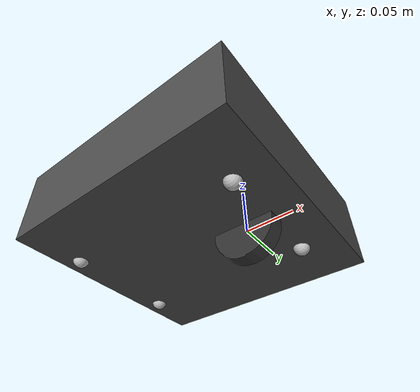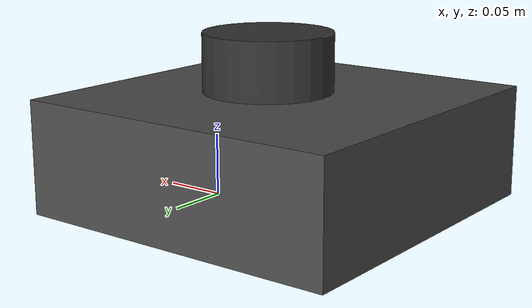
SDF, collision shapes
<?xml version="1.0" ?>
<sdf version="1.5">
  <model name="turtlebot3_waffle_pi_omni">
  <pose>0.0 0.0 0.0 0.0 0.0 0.0</pose>

    <link name="base_footprint"/>

    <link name="base_link">

      <inertial>
        <pose>-0.064 0 0.048 0 0 0</pose>
        <inertia>
          <ixx>4.2111447e-02</ixx>
          <ixy>0</ixy>
          <ixz>0</ixz>
          <iyy>4.2111447e-02</iyy>
          <iyz>0</iyz>
          <izz>7.5254874e-02</izz>
        </inertia>
        <mass>1.3729096e+00</mass>
      </inertial>

      <collision name="base_collision">
        <pose>-0.064 0 0.048 0 0 0</pose>
        <geometry>
          <box>
            <size>0.265 0.265 0.089</size>
          </box>
        </geometry>
      </collision>

      <visual name="base_visual">
        <pose>-0.064 0 0 0 0 0</pose>
        <geometry>
          <mesh>
            <uri>model://turtlebot3_common/meshes/bases/waffle_pi_base.stl</uri>
            <scale>0.001 0.001 0.001</scale>
          </mesh>
        </geometry>
        <material>
          <ambient>0.3 0.3 0.3 1.0</ambient>
          <diffuse>0.3 0.3 0.3 1.0</diffuse>
        </material>
      </visual>
    </link>

    <link name='caster_back_right_link'>
      <pose>-0.177 -0.064 0.006 -1.57 0 0</pose>
      <inertial>
        <mass>0.501</mass>
        <inertia>
          <ixx>0.00001</ixx>
          <ixy>0.000</ixy>
          <ixz>0.000</ixz>
          <iyy>0.00001</iyy>
          <iyz>0.000</iyz>
          <izz>0.00001</izz>
        </inertia>
      </inertial>
      <collision name='collision'>
        <geometry>
          <sphere>
            <radius>0.009000</radius>
          </sphere>
        </geometry>
        <surface>
          <contact>
            <ode>
              <soft_cfm>0</soft_cfm>
              <soft_erp>0.2</soft_erp>
              <kp>1e+5</kp>
              <kd>1</kd>
              <max_vel>0.01</max_vel>
              <min_depth>0.001</min_depth>
            </ode>
          </contact>
        </surface>
      </collision>
    </link>

    <link name='caster_back_left_link'>
      <pose>-0.177 0.064 0.006 -1.57 0 0</pose>
      <inertial>
        <mass>0.501</mass>
        <inertia>
          <ixx>0.00001</ixx>
          <ixy>0.000</ixy>
          <ixz>0.000</ixz>
          <iyy>0.00001</iyy>
          <iyz>0.000</iyz>
          <izz>0.00001</izz>
        </inertia>
      </inertial>
      <collision name='collision'>
        <geometry>
          <sphere>
            <radius>0.009000</radius>
          </sphere>
        </geometry>
        <surface>
          <contact>
            <ode>
              <soft_cfm>0</soft_cfm>
              <soft_erp>0.2</soft_erp>
              <kp>1e+5</kp>
              <kd>1</kd>
              <max_vel>0.01</max_vel>
              <min_depth>0.001</min_depth>
            </ode>
          </contact>
        </surface>
      </collision>
    </link>

    <link name='caster_front_right_link'>
      <pose> 0.027 -0.064 0.004 -1.57 0 0</pose>
      <inertial>
        <mass>0.501</mass>
        <inertia>
          <ixx>0.00001</ixx>
          <ixy>0.000</ixy>
          <ixz>0.000</ixz>
          <iyy>0.00001</iyy>
          <iyz>0.000</iyz>
          <izz>0.00001</izz>
        </inertia>
      </inertial>
      <collision name='collision'>
        <geometry>
          <sphere>
            <radius>0.009000</radius>
          </sphere>
        </geometry>
        <surface>
          <contact>
            <ode>
              <soft_cfm>0</soft_cfm>
              <soft_erp>0.2</soft_erp>
              <kp>1e+5</kp>
              <kd>1</kd>
              <max_vel>0.01</max_vel>
              <min_depth>0.001</min_depth>
            </ode>
          </contact>
        </surface>
      </collision>
    </link>

    <link name='caster_front_left_link'>
      <pose> 0.027 0.064 0.004 -1.57 0 0</pose>
      <inertial>
        <mass>0.501</mass>
        <inertia>
          <ixx>0.00001</ixx>
          <ixy>0.000</ixy>
          <ixz>0.000</ixz>
          <iyy>0.00001</iyy>
          <iyz>0.000</iyz>
          <izz>0.00001</izz>
        </inertia>
      </inertial>
      <collision name='collision'>
        <geometry>
          <sphere>
            <radius>0.009000</radius>
          </sphere>
        </geometry>
        <surface>
          <contact>
            <ode>
              <soft_cfm>0</soft_cfm>
              <soft_erp>0.2</soft_erp>
              <kp>1e+5</kp>
              <kd>1</kd>
              <max_vel>0.01</max_vel>
              <min_depth>0.001</min_depth>
            </ode>
          </contact>
        </surface>
      </collision>
    </link>

    <link name="imu_link">
      <sensor name="tb3_imu" type="imu">
        <always_on>true</always_on>
        <update_rate>200</update_rate>
        <imu>
          <angular_velocity>
            <x><noise type="gaussian"><mean>0.0</mean><stddev>2e-4</stddev></noise></x>
            <y><noise type="gaussian"><mean>0.0</mean><stddev>2e-4</stddev></noise></y>
            <z><noise type="gaussian"><mean>0.0</mean><stddev>2e-4</stddev></noise></z>
          </angular_velocity>
          <linear_acceleration>
            <x><noise type="gaussian"><mean>0.0</mean><stddev>1.7e-2</stddev></noise></x>
            <y><noise type="gaussian"><mean>0.0</mean><stddev>1.7e-2</stddev></noise></y>
            <z><noise type="gaussian"><mean>0.0</mean><stddev>1.7e-2</stddev></noise></z>
          </linear_acceleration>
        </imu>
        <plugin name="turtlebot3_imu" filename="libgazebo_ros_imu_sensor.so">
          <ros><remapping>~/out:=imu</remapping></ros>
        </plugin>
      </sensor>
    </link>

    <link name="base_scan">
      <inertial>
        <pose>-0.052 0 0.111 0 0 0</pose>
        <inertia>
          <ixx>0.001</ixx><ixy>0.000</ixy><ixz>0.000</ixz>
          <iyy>0.001</iyy><iyz>0.000</iyz><izz>0.001</izz>
        </inertia>
        <mass>0.114</mass>
      </inertial>

      <collision name="lidar_sensor_collision">
        <pose>-0.052 0 0.111 0 0 0</pose>
        <geometry>
          <cylinder><radius>0.0508</radius><length>0.055</length></cylinder>
        </geometry>
      </collision>

      <visual name="lidar_sensor_visual">
        <pose>-0.064 0 0.121 0 0 0</pose>
        <geometry>
          <mesh>
            <uri>model://turtlebot3_common/meshes/sensors/lds.stl</uri>
            <scale>0.001 0.001 0.001</scale>
          </mesh>
        </geometry>
        <material>
          <ambient>0.2 0.2 0.2 1.0</ambient>
          <diffuse>0.2 0.2 0.2 1.0</diffuse>
        </material>
      </visual>

      <sensor name="hls_lfcd_lds" type="ray">
        <always_on>true</always_on>
        <visualize>true</visualize>
        <pose>-0.064 0 0.011 0 0 0</pose>
        <update_rate>5</update_rate>
        <ray>
          <scan>
            <horizontal>
              <samples>360</samples>
              <resolution>1.000000</resolution>
              <min_angle>0.000000</min_angle>
              <max_angle>6.280000</max_angle>
            </horizontal>
          </scan>
          <range>
            <min>0.200000</min>
            <max>10.0</max>
            <resolution>0.015000</resolution>
          </range>
          <noise>
            <type>gaussian</type>
            <mean>0.0</mean>
            <stddev>0.01</stddev>
          </noise>
        </ray>
        <plugin name="turtlebot3_laserscan" filename="libgazebo_ros_ray_sensor.so">
          <ros><remapping>~/out:=scan</remapping></ros>
          <output_type>sensor_msgs/LaserScan</output_type>
          <frame_name>base_scan</frame_name>
        </plugin>
      </sensor>
    </link>

    <!-- 四个全向轮                                                   -->
    <!-- 轮子模型：竖直放置的圆柱体，绕自身水平轴滚动                 -->
    <!-- link 的 pose 在 joint 中定义，这里 link 内部只放几何         -->

    <!-- 前左轮 -->
    <link name="wheel_front_left_link">
      <inertial>
        <pose>0 0 0 0 0 0</pose>
        <inertia>
          <ixx>1.8158194e-03</ixx><ixy>0</ixy><ixz>0</ixz>
          <iyy>3.2922126e-03</iyy><iyz>0</iyz>
          <izz>1.8158194e-03</izz>
        </inertia>
        <mass>2.8498940e-02</mass>
      </inertial>

      <!-- 轮子几何：圆柱轴沿 link 的 Y 轴，即轮子绕 Y 轴滚动 -->
      <collision name="wheel_front_left_collision">
        <pose>0 0 0 1.5708 0 0</pose>
        <geometry>
          <cylinder><radius>0.033</radius><length>0.018</length></cylinder>
        </geometry>
        <surface>
          <friction>
            <ode>
              <mu>1.0</mu>
              <mu2>1.0</mu2>
              <fdir1>1 0 0</fdir1>
            </ode>
          </friction>
          <contact>
            <ode>
              <soft_cfm>0</soft_cfm><soft_erp>0.2</soft_erp>
              <kp>1e+5</kp><kd>1</kd>
              <max_vel>0.01</max_vel><min_depth>0.001</min_depth>
            </ode>
          </contact>
        </surface>
      </collision>

      <visual name="wheel_front_left_visual">
        <pose>0 0 0 1.5708 0 0</pose>
        <geometry>
          <mesh>
            <uri>model://turtlebot3_common/meshes/wheels/right_tire.stl</uri>
            <scale>0.001 0.001 0.001</scale>
          </mesh>
        </geometry>
        <material>
          <ambient>0.2 0.2 0.2 1.0</ambient>
          <diffuse>0.2 0.2 0.2 1.0</diffuse>
        </material>
      </visual>
    </link>

    <!-- 前右轮 -->
    <link name="wheel_front_right_link">
      <inertial>
        <pose>0 0 0 0 0 0</pose>
        <inertia>
          <ixx>1.8158194e-03</ixx><ixy>0</ixy><ixz>0</ixz>
          <iyy>3.2922126e-03</iyy><iyz>0</iyz><izz>1.8158194e-03</izz>
        </inertia>
        <mass>2.8498940e-02</mass>
      </inertial>

      <collision name="wheel_front_right_collision">
        <pose>0 0 0 1.5708 0 0</pose>
        <geometry>
          <cylinder><radius>0.033</radius><length>0.018</length></cylinder>
        </geometry>
        <surface>
          <friction>
            <ode>
              <mu>1.0</mu><mu2>1.0</mu2><fdir1>1 0 0</fdir1>
            </ode>
          </friction>
          <contact>
            <ode>
              <soft_cfm>0</soft_cfm><soft_erp>0.2</soft_erp>
              <kp>1e+5</kp><kd>1</kd>
              <max_vel>0.01</max_vel><min_depth>0.001</min_depth>
            </ode>
          </contact>
        </surface>
      </collision>

      <visual name="wheel_front_right_visual">
        <pose>0 0 0 1.5708 0 0</pose>
        <geometry>
          <mesh>
            <uri>model://turtlebot3_common/meshes/wheels/left_tire.stl</uri>
            <scale>0.001 0.001 0.001</scale>
          </mesh>
        </geometry>
        <material>
          <ambient>0.2 0.2 0.2 1.0</ambient>
          <diffuse>0.2 0.2 0.2 1.0</diffuse>
        </material>
      </visual>
    </link>

    <!-- 后左轮 -->
    <link name="wheel_rear_left_link">
      <inertial>
        <pose>0 0 0 0 0 0</pose>
        <inertia>
          <ixx>1.8158194e-03</ixx><ixy>0</ixy><ixz>0</ixz>
          <iyy>3.2922126e-03</iyy><iyz>0</iyz><izz>1.8158194e-03</izz>
        </inertia>
        <mass>2.8498940e-02</mass>
      </inertial>

      <collision name="wheel_rear_left_collision">
        <pose>0 0 0 1.5708 0 0</pose>
        <geometry>
          <cylinder><radius>0.033</radius><length>0.018</length></cylinder>
        </geometry>
        <surface>
          <friction>
            <ode>
              <mu>1.0</mu><mu2>1.0</mu2><fdir1>1 0 0</fdir1>
            </ode>
          </friction>
          <contact>
            <ode>
              <soft_cfm>0</soft_cfm><soft_erp>0.2</soft_erp>
              <kp>1e+5</kp><kd>1</kd>
              <max_vel>0.01</max_vel><min_depth>0.001</min_depth>
            </ode>
          </contact>
        </surface>
      </collision>

      <visual name="wheel_rear_left_visual">
        <pose>0 0 0 1.5708 0 0</pose>
        <geometry>
          <mesh>
            <uri>model://turtlebot3_common/meshes/wheels/right_tire.stl</uri>
            <scale>0.001 0.001 0.001</scale>
          </mesh>
        </geometry>
        <material>
          <ambient>0.2 0.2 0.2 1.0</ambient>
          <diffuse>0.2 0.2 0.2 1.0</diffuse>
        </material>
      </visual>
    </link>

    <!-- 后右轮 -->
    <link name="wheel_rear_right_link">
      <inertial>
        <pose>0 0 0 0 0 0</pose>
        <inertia>
          <ixx>1.8158194e-03</ixx><ixy>0</ixy><ixz>0</ixz>
          <iyy>3.2922126e-03</iyy><iyz>0</iyz><izz>1.8158194e-03</izz>
        </inertia>
        <mass>2.8498940e-02</mass>
      </inertial>

      <collision name="wheel_rear_right_collision">
        <pose>0 0 0 1.5708 0 0</pose>
        <geometry>
          <cylinder><radius>0.033</radius><length>0.018</length></cylinder>
        </geometry>
        <surface>
          <friction>
            <ode>
              <mu>1.0</mu><mu2>1.0</mu2><fdir1>1 0 0</fdir1>
            </ode>
          </friction>
          <contact>
            <ode>
              <soft_cfm>0</soft_cfm><soft_erp>0.2</soft_erp>
              <kp>1e+5</kp><kd>1</kd>
              <max_vel>0.01</max_vel><min_depth>0.001</min_depth>
            </ode>
          </contact>
        </surface>
      </collision>

      <visual name="wheel_rear_right_visual">
        <pose>0 0 0 1.5708 0 0</pose>
        <geometry>
          <mesh>
            <uri>model://turtlebot3_common/meshes/wheels/left_tire.stl</uri>
            <scale>0.001 0.001 0.001</scale>
          </mesh>
        </geometry>
        <material>
          <ambient>0.2 0.2 0.2 1.0</ambient>
          <diffuse>0.2 0.2 0.2 1.0</diffuse>
        </material>
      </visual>
    </link>

    <link name="camera_link"/>

    <link name="camera_rgb_optical_frame">
      <inertial>
        <pose>0.076 0.0 0.093 0 0 0</pose>
        <inertia>
          <ixx>0.001</ixx><ixy>0.000</ixy><ixz>0.000</ixz>
          <iyy>0.001</iyy><iyz>0.000</iyz><izz>0.001</izz>
        </inertia>
        <mass>0.035</mass>
      </inertial>

      <pose>0.076 0.0 0.093 0 0 0</pose>
      <sensor name="camera" type="camera">
        <always_on>true</always_on>
        <visualize>true</visualize>
        <update_rate>30</update_rate>
        <camera name="picam">
          <horizontal_fov>1.085595</horizontal_fov>
          <image><width>640</width><height>480</height><format>R8G8B8</format></image>
          <clip><near>0.03</near><far>100</far></clip>
          <noise><type>gaussian</type><mean>0.0</mean><stddev>0.007</stddev></noise>
        </camera>
        <plugin name="camera_driver" filename="libgazebo_ros_camera.so">
          <ros></ros>
        </plugin>
      </sensor>
    </link>

    <!-- 关节                                                         -->

    <joint name="base_joint" type="fixed">
      <parent>base_footprint</parent>
      <child>base_link</child>
      <pose>0.0 0.0 0.010 0 0 0</pose>
    </joint>

    <!-- 四个轮子：安装位置相对 base_link 中心对称 -->
    <!-- 轮心高度 z=0.023（轮半径 0.033，车底离地约 0.01） -->
    <!-- 轮子绕 Y 轴旋转（滚动方向为 X） -->
    <!-- pose: x y z roll pitch yaw -->
    <!-- 前左：x=+0.10, y=+0.10 -->
    <joint name="wheel_front_left_joint" type="revolute">
      <parent>base_link</parent>
      <child>wheel_front_left_link</child>
      <pose>0.10 0.10 0.023 0 0 0</pose>
      <axis>
        <xyz>0 1 0</xyz>
        <limit>
          <lower>-1e16</lower>
          <upper>1e16</upper>
          <effort>20</effort>
          <velocity>10</velocity>
        </limit>
        <dynamics>
          <damping>0.01</damping>
          <friction>0.0</friction>
        </dynamics>
      </axis>
    </joint>

    <!-- 前右：x=+0.10, y=-0.10 -->
    <joint name="wheel_front_right_joint" type="revolute">
      <parent>base_link</parent>
      <child>wheel_front_right_link</child>
      <pose>0.10 -0.10 0.023 0 0 0</pose>
      <axis>
        <xyz>0 1 0</xyz>
        <limit>
          <lower>-1e16</lower>
          <upper>1e16</upper>
          <effort>20</effort>
          <velocity>10</velocity>
        </limit>
        <dynamics>
          <damping>0.01</damping>
          <friction>0.0</friction>
        </dynamics>
      </axis>
    </joint>

    <!-- 后左：x=-0.10, y=+0.10 -->
    <joint name="wheel_rear_left_joint" type="revolute">
      <parent>base_link</parent>
      <child>wheel_rear_left_link</child>
      <pose>-0.10 0.10 0.023 0 0 0</pose>
      <axis>
        <xyz>0 1 0</xyz>
        <limit>
          <lower>-1e16</lower>
          <upper>1e16</upper>
          <effort>20</effort>
          <velocity>10</velocity>
        </limit>
        <dynamics>
          <damping>0.01</damping>
          <friction>0.0</friction>
        </dynamics>
      </axis>
    </joint>

    <!-- 后右：x=-0.10, y=-0.10 -->
    <joint name="wheel_rear_right_joint" type="revolute">
      <parent>base_link</parent>
      <child>wheel_rear_right_link</child>
      <pose>-0.10 -0.10 0.023 0 0 0</pose>
      <axis>
        <xyz>0 1 0</xyz>
        <limit>
          <lower>-1e16</lower>
          <upper>1e16</upper>
          <effort>20</effort>
          <velocity>10</velocity>
        </limit>
        <dynamics>
          <damping>0.01</damping>
          <friction>0.0</friction>
        </dynamics>
      </axis>
    </joint>

    <joint name='caster_back_right_joint' type='ball'>
      <parent>base_link</parent>
      <child>caster_back_right_link</child>
    </joint>

    <joint name='caster_back_left_joint' type='ball'>
      <parent>base_link</parent>
      <child>caster_back_left_link</child>
    </joint>
    <joint name='caster_front_right_joint' type='ball'>
      <parent>base_link</parent>
      <child>caster_front_right_link</child>
    </joint>

    <joint name='caster_front_left_joint' type='ball'>
      <parent>base_link</parent>
      <child>caster_front_left_link</child>
    </joint>

    <joint name="imu_joint" type="fixed">
      <parent>base_link</parent>
      <child>imu_link</child>
      <pose>-0.032 0 0.068 0 0 0</pose>
    </joint>

    <joint name="lidar_joint" type="fixed">
      <parent>base_link</parent>
      <child>base_scan</child>
      <pose>-0.064 0 0.121 0 0 0</pose>
    </joint>

    <joint name="camera_joint" type="fixed">
      <parent>base_link</parent>
      <child>camera_link</child>
      <pose>0.073 -0.011 0.084 0 0 0</pose>
    </joint>

    <joint name="camera_rgb_joint" type="fixed">
      <parent>camera_link</parent>
      <child>camera_rgb_optical_frame</child>
      <pose>0.003 0.011 0.009 0 0 0</pose>
    </joint>

    <!-- 全向移动驱动插件                                             -->
    <!-- planar_move：直接控制平面速度 vx, vy, wz，不依赖轮子物理    -->
    <plugin name="omni_drive" filename="libgazebo_ros_planar_move.so">
      <ros>
        <remapping>cmd_vel:=cmd_vel</remapping>
        <remapping>odom:=odom</remapping>
      </ros>
      <update_rate>30</update_rate>
      <publish_odom>true</publish_odom>
      <publish_odom_tf>true</publish_odom_tf>
      <publish_wheel_tf>false</publish_wheel_tf>
      <odometry_frame>odom</odometry_frame>
      <robot_base_frame>base_footprint</robot_base_frame>
    </plugin>

    <!-- 让四个轮子随机器人速度旋转（视觉上好看） -->
    <!-- 注意：planar_move 不会驱动关节，这里用 joint_state_publisher 只发布状态 -->
    <plugin name="turtlebot3_joint_state" filename="libgazebo_ros_joint_state_publisher.so">
      <ros><remapping>~/out:=joint_states</remapping></ros>
      <update_rate>30</update_rate>
      <joint_name>wheel_front_left_joint</joint_name>
      <joint_name>wheel_front_right_joint</joint_name>
      <joint_name>wheel_rear_left_joint</joint_name>
      <joint_name>wheel_rear_right_joint</joint_name>
    </plugin>

  </model>
</sdf>
